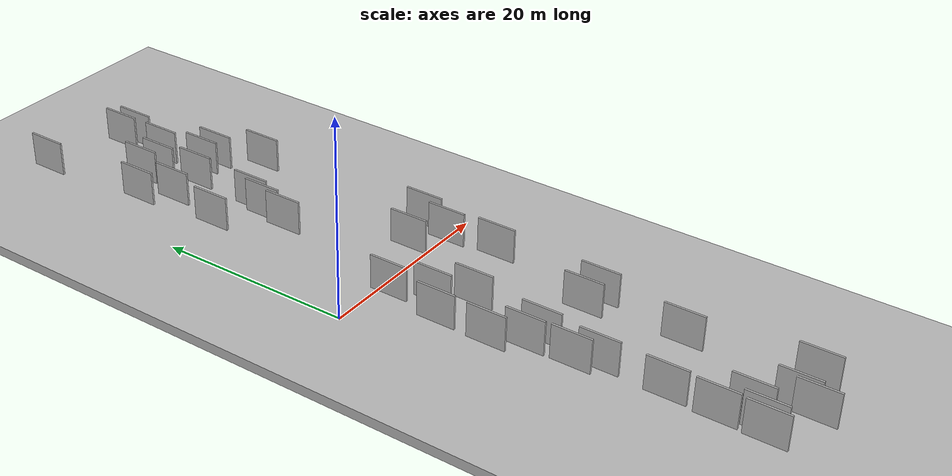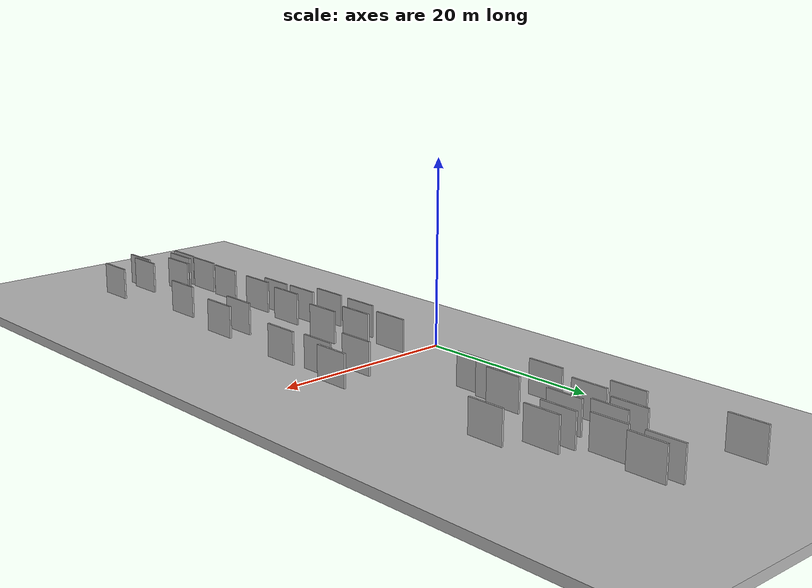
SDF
<?xml version="1.0" encoding="utf-8"?>

<sdf version="1.6">

   <world name="default">

      <gui fullscreen="0">

         <camera name="user_camera">

            <pose>-15 0 4.57585 0 0 0</pose>

            <view_controller>orbit</view_controller>

         </camera>

      </gui>

      <scene>

         <sky>

           <clouds>

             <speed>12</speed>

           </clouds>

         </sky>

         <ambient>0.4 0.4 0.4 1</ambient>

         <background>0.7 0.7 0.7 1</background>

         <shadows>1</shadows>

      </scene>

      <gravity>0 0 -9.8066</gravity>

      <magnetic_field>6e-06 2.3e-05 -4.2e-05</magnetic_field>

      <physics default="0" name="default_physics" type="ode">

         <ode>

            <solver>

               <type>quick</type>

               <iters>10</iters>

               <sor>1.0</sor>

               <use_dynamic_moi_rescaling>0</use_dynamic_moi_rescaling>

            </solver>

            <constraints>

               <cfm>0</cfm>

               <erp>0.2</erp>

               <contact_max_correcting_vel>100</contact_max_correcting_vel>

               <contact_surface_layer>0.001</contact_surface_layer>

            </constraints>

         </ode>

         <max_step_size>0.004</max_step_size>

         <real_time_factor>1</real_time_factor>

         <real_time_update_rate>250</real_time_update_rate>

      </physics>

      <light name="sun" type="directional">

         <cast_shadows>1</cast_shadows>

         <pose>0 0 10 0 0 0</pose>

         <diffuse>0.8 0.8 0.8 1</diffuse>

         <specular>0.2 0.2 0.2 1</specular>

         <attenuation>

            <range>1000</range>

            <constant>0.9</constant>

            <linear>0.01</linear>

            <quadratic>0.001</quadratic>

         </attenuation>

         <direction>-0.5 0.1 -0.9</direction>

      </light>

      <include>

         <name>ground_plane_1</name>

         <uri>model://HANNAS_ground_plane</uri>

         <pose>0 0 0  0 0 0</pose>

      </include>

      <include>

         <name>ground_plane_2</name>

         <uri>model://HANNAS_ground_plane</uri>

         <pose>100 0 0  0 0 0</pose>

      </include>

      <model name="HANNAS_wall_1">

         <static>1</static>

         <pose frame="">14.0933 26.8934 0.0 0.000000 0.000000 1.570796</pose>

         <link name="link">

            <pose frame="">0 0 2.00 0 0 0</pose>

            <collision name="collision">

               <geometry>

                  <box>

                     <size>4.00 0.2 4.00</size>

                  </box>

               </geometry>

               <max_contacts>10</max_contacts>

               <surface>

                  <contact>

                     <ode/>

                  </contact>

                  <bounce/>

                  <friction>

                     <torsional>

                        <ode/>

                     </torsional>

                     <ode/>

                  </friction>

               </surface>

            </collision>

            <visual name="visual">

               <cast_shadows>0</cast_shadows>

               <geometry>

                  <box>

                     <size>4.00 0.2 4.00</size>

                  </box>

               </geometry>

               <material>

                  <script>

                     <uri>model://HANNAS_wall/materials/scripts</uri>

                     <uri>model://HANNAS_wall/materials/textures</uri>

                     <name>vrc/HANNAS_wall</name>

                  </script>

               </material>

            </visual>

            <self_collide>0</self_collide>

            <enable_wind>0</enable_wind>

            <kinematic>0</kinematic>

         </link>

      </model>

      <model name="HANNAS_wall_2">

         <static>1</static>

         <pose frame="">10.8420 -39.9444 0.0 0.000000 0.000000 1.570796</pose>

         <link name="link">

            <pose frame="">0 0 2.00 0 0 0</pose>

            <collision name="collision">

               <geometry>

                  <box>

                     <size>4.00 0.2 4.00</size>

                  </box>

               </geometry>

               <max_contacts>10</max_contacts>

               <surface>

                  <contact>

                     <ode/>

                  </contact>

                  <bounce/>

                  <friction>

                     <torsional>

                        <ode/>

                     </torsional>

                     <ode/>

                  </friction>

               </surface>

            </collision>

            <visual name="visual">

               <cast_shadows>0</cast_shadows>

               <geometry>

                  <box>

                     <size>4.00 0.2 4.00</size>

                  </box>

               </geometry>

               <material>

                  <script>

                     <uri>model://HANNAS_wall/materials/scripts</uri>

                     <uri>model://HANNAS_wall/materials/textures</uri>

                     <name>vrc/HANNAS_wall</name>

                  </script>

               </material>

            </visual>

            <self_collide>0</self_collide>

            <enable_wind>0</enable_wind>

            <kinematic>0</kinematic>

         </link>

      </model>

      <model name="HANNAS_wall_3">

         <static>1</static>

         <pose frame="">6.5179 -5.4441 0.0 0.000000 0.000000 1.570796</pose>

         <link name="link">

            <pose frame="">0 0 2.00 0 0 0</pose>

            <collision name="collision">

               <geometry>

                  <box>

                     <size>4.00 0.2 4.00</size>

                  </box>

               </geometry>

               <max_contacts>10</max_contacts>

               <surface>

                  <contact>

                     <ode/>

                  </contact>

                  <bounce/>

                  <friction>

                     <torsional>

                        <ode/>

                     </torsional>

                     <ode/>

                  </friction>

               </surface>

            </collision>

            <visual name="visual">

               <cast_shadows>0</cast_shadows>

               <geometry>

                  <box>

                     <size>4.00 0.2 4.00</size>

                  </box>

               </geometry>

               <material>

                  <script>

                     <uri>model://HANNAS_wall/materials/scripts</uri>

                     <uri>model://HANNAS_wall/materials/textures</uri>

                     <name>vrc/HANNAS_wall</name>

                  </script>

               </material>

            </visual>

            <self_collide>0</self_collide>

            <enable_wind>0</enable_wind>

            <kinematic>0</kinematic>

         </link>

      </model>

      <model name="HANNAS_wall_4">

         <static>1</static>

         <pose frame="">9.0291 30.0186 0.0 0.000000 0.000000 1.570796</pose>

         <link name="link">

            <pose frame="">0 0 2.00 0 0 0</pose>

            <collision name="collision">

               <geometry>

                  <box>

                     <size>4.00 0.2 4.00</size>

                  </box>

               </geometry>

               <max_contacts>10</max_contacts>

               <surface>

                  <contact>

                     <ode/>

                  </contact>

                  <bounce/>

                  <friction>

                     <torsional>

                        <ode/>

                     </torsional>

                     <ode/>

                  </friction>

               </surface>

            </collision>

            <visual name="visual">

               <cast_shadows>0</cast_shadows>

               <geometry>

                  <box>

                     <size>4.00 0.2 4.00</size>

                  </box>

               </geometry>

               <material>

                  <script>

                     <uri>model://HANNAS_wall/materials/scripts</uri>

                     <uri>model://HANNAS_wall/materials/textures</uri>

                     <name>vrc/HANNAS_wall</name>

                  </script>

               </material>

            </visual>

            <self_collide>0</self_collide>

            <enable_wind>0</enable_wind>

            <kinematic>0</kinematic>

         </link>

      </model>

      <model name="HANNAS_wall_5">

         <static>1</static>

         <pose frame="">3.9470 -12.8075 0.0 0.000000 0.000000 1.570796</pose>

         <link name="link">

            <pose frame="">0 0 2.00 0 0 0</pose>

            <collision name="collision">

               <geometry>

                  <box>

                     <size>4.00 0.2 4.00</size>

                  </box>

               </geometry>

               <max_contacts>10</max_contacts>

               <surface>

                  <contact>

                     <ode/>

                  </contact>

                  <bounce/>

                  <friction>

                     <torsional>

                        <ode/>

                     </torsional>

                     <ode/>

                  </friction>

               </surface>

            </collision>

            <visual name="visual">

               <cast_shadows>0</cast_shadows>

               <geometry>

                  <box>

                     <size>4.00 0.2 4.00</size>

                  </box>

               </geometry>

               <material>

                  <script>

                     <uri>model://HANNAS_wall/materials/scripts</uri>

                     <uri>model://HANNAS_wall/materials/textures</uri>

                     <name>vrc/HANNAS_wall</name>

                  </script>

               </material>

            </visual>

            <self_collide>0</self_collide>

            <enable_wind>0</enable_wind>

            <kinematic>0</kinematic>

         </link>

      </model>

      <model name="HANNAS_wall_6">

         <static>1</static>

         <pose frame="">5.4789 -20.3172 0.0 0.000000 0.000000 1.570796</pose>

         <link name="link">

            <pose frame="">0 0 2.00 0 0 0</pose>

            <collision name="collision">

               <geometry>

                  <box>

                     <size>4.00 0.2 4.00</size>

                  </box>

               </geometry>

               <max_contacts>10</max_contacts>

               <surface>

                  <contact>

                     <ode/>

                  </contact>

                  <bounce/>

                  <friction>

                     <torsional>

                        <ode/>

                     </torsional>

                     <ode/>

                  </friction>

               </surface>

            </collision>

            <visual name="visual">

               <cast_shadows>0</cast_shadows>

               <geometry>

                  <box>

                     <size>4.00 0.2 4.00</size>

                  </box>

               </geometry>

               <material>

                  <script>

                     <uri>model://HANNAS_wall/materials/scripts</uri>

                     <uri>model://HANNAS_wall/materials/textures</uri>

                     <name>vrc/HANNAS_wall</name>

                  </script>

               </material>

            </visual>

            <self_collide>0</self_collide>

            <enable_wind>0</enable_wind>

            <kinematic>0</kinematic>

         </link>

      </model>

      <model name="HANNAS_wall_7">

         <static>1</static>

         <pose frame="">13.1895 -16.9436 0.0 0.000000 0.000000 1.570796</pose>

         <link name="link">

            <pose frame="">0 0 2.00 0 0 0</pose>

            <collision name="collision">

               <geometry>

                  <box>

                     <size>4.00 0.2 4.00</size>

                  </box>

               </geometry>

               <max_contacts>10</max_contacts>

               <surface>

                  <contact>

                     <ode/>

                  </contact>

                  <bounce/>

                  <friction>

                     <torsional>

                        <ode/>

                     </torsional>

                     <ode/>

                  </friction>

               </surface>

            </collision>

            <visual name="visual">

               <cast_shadows>0</cast_shadows>

               <geometry>

                  <box>

                     <size>4.00 0.2 4.00</size>

                  </box>

               </geometry>

               <material>

                  <script>

                     <uri>model://HANNAS_wall/materials/scripts</uri>

                     <uri>model://HANNAS_wall/materials/textures</uri>

                     <name>vrc/HANNAS_wall</name>

                  </script>

               </material>

            </visual>

            <self_collide>0</self_collide>

            <enable_wind>0</enable_wind>

            <kinematic>0</kinematic>

         </link>

      </model>

      <model name="HANNAS_wall_8">

         <static>1</static>

         <pose frame="">6.3228 -28.8273 0.0 0.000000 0.000000 1.570796</pose>

         <link name="link">

            <pose frame="">0 0 2.00 0 0 0</pose>

            <collision name="collision">

               <geometry>

                  <box>

                     <size>4.00 0.2 4.00</size>

                  </box>

               </geometry>

               <max_contacts>10</max_contacts>

               <surface>

                  <contact>

                     <ode/>

                  </contact>

                  <bounce/>

                  <friction>

                     <torsional>

                        <ode/>

                     </torsional>

                     <ode/>

                  </friction>

               </surface>

            </collision>

            <visual name="visual">

               <cast_shadows>0</cast_shadows>

               <geometry>

                  <box>

                     <size>4.00 0.2 4.00</size>

                  </box>

               </geometry>

               <material>

                  <script>

                     <uri>model://HANNAS_wall/materials/scripts</uri>

                     <uri>model://HANNAS_wall/materials/textures</uri>

                     <name>vrc/HANNAS_wall</name>

                  </script>

               </material>

            </visual>

            <self_collide>0</self_collide>

            <enable_wind>0</enable_wind>

            <kinematic>0</kinematic>

         </link>

      </model>

      <model name="HANNAS_wall_9">

         <static>1</static>

         <pose frame="">6.0902 25.4037 0.0 0.000000 0.000000 1.570796</pose>

         <link name="link">

            <pose frame="">0 0 2.00 0 0 0</pose>

            <collision name="collision">

               <geometry>

                  <box>

                     <size>4.00 0.2 4.00</size>

                  </box>

               </geometry>

               <max_contacts>10</max_contacts>

               <surface>

                  <contact>

                     <ode/>

                  </contact>

                  <bounce/>

                  <friction>

                     <torsional>

                        <ode/>

                     </torsional>

                     <ode/>

                  </friction>

               </surface>

            </collision>

            <visual name="visual">

               <cast_shadows>0</cast_shadows>

               <geometry>

                  <box>

                     <size>4.00 0.2 4.00</size>

                  </box>

               </geometry>

               <material>

                  <script>

                     <uri>model://HANNAS_wall/materials/scripts</uri>

                     <uri>model://HANNAS_wall/materials/textures</uri>

                     <name>vrc/HANNAS_wall</name>

                  </script>

               </material>

            </visual>

            <self_collide>0</self_collide>

            <enable_wind>0</enable_wind>

            <kinematic>0</kinematic>

         </link>

      </model>

      <model name="HANNAS_wall_10">

         <static>1</static>

         <pose frame="">8.2952 13.2412 0.0 0.000000 0.000000 1.570796</pose>

         <link name="link">

            <pose frame="">0 0 2.00 0 0 0</pose>

            <collision name="collision">

               <geometry>

                  <box>

                     <size>4.00 0.2 4.00</size>

                  </box>

               </geometry>

               <max_contacts>10</max_contacts>

               <surface>

                  <contact>

                     <ode/>

                  </contact>

                  <bounce/>

                  <friction>

                     <torsional>

                        <ode/>

                     </torsional>

                     <ode/>

                  </friction>

               </surface>

            </collision>

            <visual name="visual">

               <cast_shadows>0</cast_shadows>

               <geometry>

                  <box>

                     <size>4.00 0.2 4.00</size>

                  </box>

               </geometry>

               <material>

                  <script>

                     <uri>model://HANNAS_wall/materials/scripts</uri>

                     <uri>model://HANNAS_wall/materials/textures</uri>

                     <name>vrc/HANNAS_wall</name>

                  </script>

               </material>

            </visual>

            <self_collide>0</self_collide>

            <enable_wind>0</enable_wind>

            <kinematic>0</kinematic>

         </link>

      </model>

      <model name="HANNAS_wall_11">

         <static>1</static>

         <pose frame="">16.1014 -5.8815 0.0 0.000000 0.000000 1.570796</pose>

         <link name="link">

            <pose frame="">0 0 2.00 0 0 0</pose>

            <collision name="collision">

               <geometry>

                  <box>

                     <size>4.00 0.2 4.00</size>

                  </box>

               </geometry>

               <max_contacts>10</max_contacts>

               <surface>

                  <contact>

                     <ode/>

                  </contact>

                  <bounce/>

                  <friction>

                     <torsional>

                        <ode/>

                     </torsional>

                     <ode/>

                  </friction>

               </surface>

            </collision>

            <visual name="visual">

               <cast_shadows>0</cast_shadows>

               <geometry>

                  <box>

                     <size>4.00 0.2 4.00</size>

                  </box>

               </geometry>

               <material>

                  <script>

                     <uri>model://HANNAS_wall/materials/scripts</uri>

                     <uri>model://HANNAS_wall/materials/textures</uri>

                     <name>vrc/HANNAS_wall</name>

                  </script>

               </material>

            </visual>

            <self_collide>0</self_collide>

            <enable_wind>0</enable_wind>

            <kinematic>0</kinematic>

         </link>

      </model>

      <model name="HANNAS_wall_12">

         <static>1</static>

         <pose frame="">11.4722 37.5668 0.0 0.000000 0.000000 1.570796</pose>

         <link name="link">

            <pose frame="">0 0 2.00 0 0 0</pose>

            <collision name="collision">

               <geometry>

                  <box>

                     <size>4.00 0.2 4.00</size>

                  </box>

               </geometry>

               <max_contacts>10</max_contacts>

               <surface>

                  <contact>

                     <ode/>

                  </contact>

                  <bounce/>

                  <friction>

                     <torsional>

                        <ode/>

                     </torsional>

                     <ode/>

                  </friction>

               </surface>

            </collision>

            <visual name="visual">

               <cast_shadows>0</cast_shadows>

               <geometry>

                  <box>

                     <size>4.00 0.2 4.00</size>

                  </box>

               </geometry>

               <material>

                  <script>

                     <uri>model://HANNAS_wall/materials/scripts</uri>

                     <uri>model://HANNAS_wall/materials/textures</uri>

                     <name>vrc/HANNAS_wall</name>

                  </script>

               </material>

            </visual>

            <self_collide>0</self_collide>

            <enable_wind>0</enable_wind>

            <kinematic>0</kinematic>

         </link>

      </model>

      <model name="HANNAS_wall_13">

         <static>1</static>

         <pose frame="">7.4066 30.8573 0.0 0.000000 0.000000 1.570796</pose>

         <link name="link">

            <pose frame="">0 0 2.00 0 0 0</pose>

            <collision name="collision">

               <geometry>

                  <box>

                     <size>4.00 0.2 4.00</size>

                  </box>

               </geometry>

               <max_contacts>10</max_contacts>

               <surface>

                  <contact>

                     <ode/>

                  </contact>

                  <bounce/>

                  <friction>

                     <torsional>

                        <ode/>

                     </torsional>

                     <ode/>

                  </friction>

               </surface>

            </collision>

            <visual name="visual">

               <cast_shadows>0</cast_shadows>

               <geometry>

                  <box>

                     <size>4.00 0.2 4.00</size>

                  </box>

               </geometry>

               <material>

                  <script>

                     <uri>model://HANNAS_wall/materials/scripts</uri>

                     <uri>model://HANNAS_wall/materials/textures</uri>

                     <name>vrc/HANNAS_wall</name>

                  </script>

               </material>

            </visual>

            <self_collide>0</self_collide>

            <enable_wind>0</enable_wind>

            <kinematic>0</kinematic>

         </link>

      </model>

      <model name="HANNAS_wall_14">

         <static>1</static>

         <pose frame="">7.1376 -16.3707 0.0 0.000000 0.000000 1.570796</pose>

         <link name="link">

            <pose frame="">0 0 2.00 0 0 0</pose>

            <collision name="collision">

               <geometry>

                  <box>

                     <size>4.00 0.2 4.00</size>

                  </box>

               </geometry>

               <max_contacts>10</max_contacts>

               <surface>

                  <contact>

                     <ode/>

                  </contact>

                  <bounce/>

                  <friction>

                     <torsional>

                        <ode/>

                     </torsional>

                     <ode/>

                  </friction>

               </surface>

            </collision>

            <visual name="visual">

               <cast_shadows>0</cast_shadows>

               <geometry>

                  <box>

                     <size>4.00 0.2 4.00</size>

                  </box>

               </geometry>

               <material>

                  <script>

                     <uri>model://HANNAS_wall/materials/scripts</uri>

                     <uri>model://HANNAS_wall/materials/textures</uri>

                     <name>vrc/HANNAS_wall</name>

                  </script>

               </material>

            </visual>

            <self_collide>0</self_collide>

            <enable_wind>0</enable_wind>

            <kinematic>0</kinematic>

         </link>

      </model>

      <model name="HANNAS_wall_15">

         <static>1</static>

         <pose frame="">15.6991 -0.5692 0.0 0.000000 0.000000 1.570796</pose>

         <link name="link">

            <pose frame="">0 0 2.00 0 0 0</pose>

            <collision name="collision">

               <geometry>

                  <box>

                     <size>4.00 0.2 4.00</size>

                  </box>

               </geometry>

               <max_contacts>10</max_contacts>

               <surface>

                  <contact>

                     <ode/>

                  </contact>

                  <bounce/>

                  <friction>

                     <torsional>

                        <ode/>

                     </torsional>

                     <ode/>

                  </friction>

               </surface>

            </collision>

            <visual name="visual">

               <cast_shadows>0</cast_shadows>

               <geometry>

                  <box>

                     <size>4.00 0.2 4.00</size>

                  </box>

               </geometry>

               <material>

                  <script>

                     <uri>model://HANNAS_wall/materials/scripts</uri>

                     <uri>model://HANNAS_wall/materials/textures</uri>

                     <name>vrc/HANNAS_wall</name>

                  </script>

               </material>

            </visual>

            <self_collide>0</self_collide>

            <enable_wind>0</enable_wind>

            <kinematic>0</kinematic>

         </link>

      </model>

      <model name="HANNAS_wall_16">

         <static>1</static>

         <pose frame="">5.9000 -37.9345 0.0 0.000000 0.000000 1.570796</pose>

         <link name="link">

            <pose frame="">0 0 2.00 0 0 0</pose>

            <collision name="collision">

               <geometry>

                  <box>

                     <size>4.00 0.2 4.00</size>

                  </box>

               </geometry>

               <max_contacts>10</max_contacts>

               <surface>

                  <contact>

                     <ode/>

                  </contact>

                  <bounce/>

                  <friction>

                     <torsional>

                        <ode/>

                     </torsional>

                     <ode/>

                  </friction>

               </surface>

            </collision>

            <visual name="visual">

               <cast_shadows>0</cast_shadows>

               <geometry>

                  <box>

                     <size>4.00 0.2 4.00</size>

                  </box>

               </geometry>

               <material>

                  <script>

                     <uri>model://HANNAS_wall/materials/scripts</uri>

                     <uri>model://HANNAS_wall/materials/textures</uri>

                     <name>vrc/HANNAS_wall</name>

                  </script>

               </material>

            </visual>

            <self_collide>0</self_collide>

            <enable_wind>0</enable_wind>

            <kinematic>0</kinematic>

         </link>

      </model>

      <model name="HANNAS_wall_17">

         <static>1</static>

         <pose frame="">5.3829 -15.8128 0.0 0.000000 0.000000 1.570796</pose>

         <link name="link">

            <pose frame="">0 0 2.00 0 0 0</pose>

            <collision name="collision">

               <geometry>

                  <box>

                     <size>4.00 0.2 4.00</size>

                  </box>

               </geometry>

               <max_contacts>10</max_contacts>

               <surface>

                  <contact>

                     <ode/>

                  </contact>

                  <bounce/>

                  <friction>

                     <torsional>

                        <ode/>

                     </torsional>

                     <ode/>

                  </friction>

               </surface>

            </collision>

            <visual name="visual">

               <cast_shadows>0</cast_shadows>

               <geometry>

                  <box>

                     <size>4.00 0.2 4.00</size>

                  </box>

               </geometry>

               <material>

                  <script>

                     <uri>model://HANNAS_wall/materials/scripts</uri>

                     <uri>model://HANNAS_wall/materials/textures</uri>

                     <name>vrc/HANNAS_wall</name>

                  </script>

               </material>

            </visual>

            <self_collide>0</self_collide>

            <enable_wind>0</enable_wind>

            <kinematic>0</kinematic>

         </link>

      </model>

      <model name="HANNAS_wall_18">

         <static>1</static>

         <pose frame="">16.4602 22.6926 0.0 0.000000 0.000000 1.570796</pose>

         <link name="link">

            <pose frame="">0 0 2.00 0 0 0</pose>

            <collision name="collision">

               <geometry>

                  <box>

                     <size>4.00 0.2 4.00</size>

                  </box>

               </geometry>

               <max_contacts>10</max_contacts>

               <surface>

                  <contact>

                     <ode/>

                  </contact>

                  <bounce/>

                  <friction>

                     <torsional>

                        <ode/>

                     </torsional>

                     <ode/>

                  </friction>

               </surface>

            </collision>

            <visual name="visual">

               <cast_shadows>0</cast_shadows>

               <geometry>

                  <box>

                     <size>4.00 0.2 4.00</size>

                  </box>

               </geometry>

               <material>

                  <script>

                     <uri>model://HANNAS_wall/materials/scripts</uri>

                     <uri>model://HANNAS_wall/materials/textures</uri>

                     <name>vrc/HANNAS_wall</name>

                  </script>

               </material>

            </visual>

            <self_collide>0</self_collide>

            <enable_wind>0</enable_wind>

            <kinematic>0</kinematic>

         </link>

      </model>

      <model name="HANNAS_wall_19">

         <static>1</static>

         <pose frame="">12.4256 27.2578 0.0 0.000000 0.000000 1.570796</pose>

         <link name="link">

            <pose frame="">0 0 2.00 0 0 0</pose>

            <collision name="collision">

               <geometry>

                  <box>

                     <size>4.00 0.2 4.00</size>

                  </box>

               </geometry>

               <max_contacts>10</max_contacts>

               <surface>

                  <contact>

                     <ode/>

                  </contact>

                  <bounce/>

                  <friction>

                     <torsional>

                        <ode/>

                     </torsional>

                     <ode/>

                  </friction>

               </surface>

            </collision>

            <visual name="visual">

               <cast_shadows>0</cast_shadows>

               <geometry>

                  <box>

                     <size>4.00 0.2 4.00</size>

                  </box>

               </geometry>

               <material>

                  <script>

                     <uri>model://HANNAS_wall/materials/scripts</uri>

                     <uri>model://HANNAS_wall/materials/textures</uri>

                     <name>vrc/HANNAS_wall</name>

                  </script>

               </material>

            </visual>

            <self_collide>0</self_collide>

            <enable_wind>0</enable_wind>

            <kinematic>0</kinematic>

         </link>

      </model>

      <model name="HANNAS_wall_20">

         <static>1</static>

         <pose frame="">8.8920 16.2990 0.0 0.000000 0.000000 1.570796</pose>

         <link name="link">

            <pose frame="">0 0 2.00 0 0 0</pose>

            <collision name="collision">

               <geometry>

                  <box>

                     <size>4.00 0.2 4.00</size>

                  </box>

               </geometry>

               <max_contacts>10</max_contacts>

               <surface>

                  <contact>

                     <ode/>

                  </contact>

                  <bounce/>

                  <friction>

                     <torsional>

                        <ode/>

                     </torsional>

                     <ode/>

                  </friction>

               </surface>

            </collision>

            <visual name="visual">

               <cast_shadows>0</cast_shadows>

               <geometry>

                  <box>

                     <size>4.00 0.2 4.00</size>

                  </box>

               </geometry>

               <material>

                  <script>

                     <uri>model://HANNAS_wall/materials/scripts</uri>

                     <uri>model://HANNAS_wall/materials/textures</uri>

                     <name>vrc/HANNAS_wall</name>

                  </script>

               </material>

            </visual>

            <self_collide>0</self_collide>

            <enable_wind>0</enable_wind>

            <kinematic>0</kinematic>

         </link>

      </model>

      <model name="HANNAS_wall_21">

         <static>1</static>

         <pose frame="">9.7380 25.6461 0.0 0.000000 0.000000 1.570796</pose>

         <link name="link">

            <pose frame="">0 0 2.00 0 0 0</pose>

            <collision name="collision">

               <geometry>

                  <box>

                     <size>4.00 0.2 4.00</size>

                  </box>

               </geometry>

               <max_contacts>10</max_contacts>

               <surface>

                  <contact>

                     <ode/>

                  </contact>

                  <bounce/>

                  <friction>

                     <torsional>

                        <ode/>

                     </torsional>

                     <ode/>

                  </friction>

               </surface>

            </collision>

            <visual name="visual">

               <cast_shadows>0</cast_shadows>

               <geometry>

                  <box>

                     <size>4.00 0.2 4.00</size>

                  </box>

               </geometry>

               <material>

                  <script>

                     <uri>model://HANNAS_wall/materials/scripts</uri>

                     <uri>model://HANNAS_wall/materials/textures</uri>

                     <name>vrc/HANNAS_wall</name>

                  </script>

               </material>

            </visual>

            <self_collide>0</self_collide>

            <enable_wind>0</enable_wind>

            <kinematic>0</kinematic>

         </link>

      </model>

      <model name="HANNAS_wall_22">

         <static>1</static>

         <pose frame="">3.1246 39.6825 0.0 0.000000 0.000000 1.570796</pose>

         <link name="link">

            <pose frame="">0 0 2.00 0 0 0</pose>

            <collision name="collision">

               <geometry>

                  <box>

                     <size>4.00 0.2 4.00</size>

                  </box>

               </geometry>

               <max_contacts>10</max_contacts>

               <surface>

                  <contact>

                     <ode/>

                  </contact>

                  <bounce/>

                  <friction>

                     <torsional>

                        <ode/>

                     </torsional>

                     <ode/>

                  </friction>

               </surface>

            </collision>

            <visual name="visual">

               <cast_shadows>0</cast_shadows>

               <geometry>

                  <box>

                     <size>4.00 0.2 4.00</size>

                  </box>

               </geometry>

               <material>

                  <script>

                     <uri>model://HANNAS_wall/materials/scripts</uri>

                     <uri>model://HANNAS_wall/materials/textures</uri>

                     <name>vrc/HANNAS_wall</name>

                  </script>

               </material>

            </visual>

            <self_collide>0</self_collide>

            <enable_wind>0</enable_wind>

            <kinematic>0</kinematic>

         </link>

      </model>

      <model name="HANNAS_wall_23">

         <static>1</static>

         <pose frame="">6.8528 -37.3187 0.0 0.000000 0.000000 1.570796</pose>

         <link name="link">

            <pose frame="">0 0 2.00 0 0 0</pose>

            <collision name="collision">

               <geometry>

                  <box>

                     <size>4.00 0.2 4.00</size>

                  </box>

               </geometry>

               <max_contacts>10</max_contacts>

               <surface>

                  <contact>

                     <ode/>

                  </contact>

                  <bounce/>

                  <friction>

                     <torsional>

                        <ode/>

                     </torsional>

                     <ode/>

                  </friction>

               </surface>

            </collision>

            <visual name="visual">

               <cast_shadows>0</cast_shadows>

               <geometry>

                  <box>

                     <size>4.00 0.2 4.00</size>

                  </box>

               </geometry>

               <material>

                  <script>

                     <uri>model://HANNAS_wall/materials/scripts</uri>

                     <uri>model://HANNAS_wall/materials/textures</uri>

                     <name>vrc/HANNAS_wall</name>

                  </script>

               </material>

            </visual>

            <self_collide>0</self_collide>

            <enable_wind>0</enable_wind>

            <kinematic>0</kinematic>

         </link>

      </model>

      <model name="HANNAS_wall_24">

         <static>1</static>

         <pose frame="">5.1294 -1.6323 0.0 0.000000 0.000000 1.570796</pose>

         <link name="link">

            <pose frame="">0 0 2.00 0 0 0</pose>

            <collision name="collision">

               <geometry>

                  <box>

                     <size>4.00 0.2 4.00</size>

                  </box>

               </geometry>

               <max_contacts>10</max_contacts>

               <surface>

                  <contact>

                     <ode/>

                  </contact>

                  <bounce/>

                  <friction>

                     <torsional>

                        <ode/>

                     </torsional>

                     <ode/>

                  </friction>

               </surface>

            </collision>

            <visual name="visual">

               <cast_shadows>0</cast_shadows>

               <geometry>

                  <box>

                     <size>4.00 0.2 4.00</size>

                  </box>

               </geometry>

               <material>

                  <script>

                     <uri>model://HANNAS_wall/materials/scripts</uri>

                     <uri>model://HANNAS_wall/materials/textures</uri>

                     <name>vrc/HANNAS_wall</name>

                  </script>

               </material>

            </visual>

            <self_collide>0</self_collide>

            <enable_wind>0</enable_wind>

            <kinematic>0</kinematic>

         </link>

      </model>

      <model name="HANNAS_wall_25">

         <static>1</static>

         <pose frame="">15.4438 -17.3265 0.0 0.000000 0.000000 1.570796</pose>

         <link name="link">

            <pose frame="">0 0 2.00 0 0 0</pose>

            <collision name="collision">

               <geometry>

                  <box>

                     <size>4.00 0.2 4.00</size>

                  </box>

               </geometry>

               <max_contacts>10</max_contacts>

               <surface>

                  <contact>

                     <ode/>

                  </contact>

                  <bounce/>

                  <friction>

                     <torsional>

                        <ode/>

                     </torsional>

                     <ode/>

                  </friction>

               </surface>

            </collision>

            <visual name="visual">

               <cast_shadows>0</cast_shadows>

               <geometry>

                  <box>

                     <size>4.00 0.2 4.00</size>

                  </box>

               </geometry>

               <material>

                  <script>

                     <uri>model://HANNAS_wall/materials/scripts</uri>

                     <uri>model://HANNAS_wall/materials/textures</uri>

                     <name>vrc/HANNAS_wall</name>

                  </script>

               </material>

            </visual>

            <self_collide>0</self_collide>

            <enable_wind>0</enable_wind>

            <kinematic>0</kinematic>

         </link>

      </model>

      <model name="HANNAS_wall_26">

         <static>1</static>

         <pose frame="">13.9778 -26.3686 0.0 0.000000 0.000000 1.570796</pose>

         <link name="link">

            <pose frame="">0 0 2.00 0 0 0</pose>

            <collision name="collision">

               <geometry>

                  <box>

                     <size>4.00 0.2 4.00</size>

                  </box>

               </geometry>

               <max_contacts>10</max_contacts>

               <surface>

                  <contact>

                     <ode/>

                  </contact>

                  <bounce/>

                  <friction>

                     <torsional>

                        <ode/>

                     </torsional>

                     <ode/>

                  </friction>

               </surface>

            </collision>

            <visual name="visual">

               <cast_shadows>0</cast_shadows>

               <geometry>

                  <box>

                     <size>4.00 0.2 4.00</size>

                  </box>

               </geometry>

               <material>

                  <script>

                     <uri>model://HANNAS_wall/materials/scripts</uri>

                     <uri>model://HANNAS_wall/materials/textures</uri>

                     <name>vrc/HANNAS_wall</name>

                  </script>

               </material>

            </visual>

            <self_collide>0</self_collide>

            <enable_wind>0</enable_wind>

            <kinematic>0</kinematic>

         </link>

      </model>

      <model name="HANNAS_wall_27">

         <static>1</static>

         <pose frame="">4.1458 28.2327 0.0 0.000000 0.000000 1.570796</pose>

         <link name="link">

            <pose frame="">0 0 2.00 0 0 0</pose>

            <collision name="collision">

               <geometry>

                  <box>

                     <size>4.00 0.2 4.00</size>

                  </box>

               </geometry>

               <max_contacts>10</max_contacts>

               <surface>

                  <contact>

                     <ode/>

                  </contact>

                  <bounce/>

                  <friction>

                     <torsional>

                        <ode/>

                     </torsional>

                     <ode/>

                  </friction>

               </surface>

            </collision>

            <visual name="visual">

               <cast_shadows>0</cast_shadows>

               <geometry>

                  <box>

                     <size>4.00 0.2 4.00</size>

                  </box>

               </geometry>

               <material>

                  <script>

                     <uri>model://HANNAS_wall/materials/scripts</uri>

                     <uri>model://HANNAS_wall/materials/textures</uri>

                     <name>vrc/HANNAS_wall</name>

                  </script>

               </material>

            </visual>

            <self_collide>0</self_collide>

            <enable_wind>0</enable_wind>

            <kinematic>0</kinematic>

         </link>

      </model>

      <model name="HANNAS_wall_28">

         <static>1</static>

         <pose frame="">12.6117 36.6488 0.0 0.000000 0.000000 1.570796</pose>

         <link name="link">

            <pose frame="">0 0 2.00 0 0 0</pose>

            <collision name="collision">

               <geometry>

                  <box>

                     <size>4.00 0.2 4.00</size>

                  </box>

               </geometry>

               <max_contacts>10</max_contacts>

               <surface>

                  <contact>

                     <ode/>

                  </contact>

                  <bounce/>

                  <friction>

                     <torsional>

                        <ode/>

                     </torsional>

                     <ode/>

                  </friction>

               </surface>

            </collision>

            <visual name="visual">

               <cast_shadows>0</cast_shadows>

               <geometry>

                  <box>

                     <size>4.00 0.2 4.00</size>

                  </box>

               </geometry>

               <material>

                  <script>

                     <uri>model://HANNAS_wall/materials/scripts</uri>

                     <uri>model://HANNAS_wall/materials/textures</uri>

                     <name>vrc/HANNAS_wall</name>

                  </script>

               </material>

            </visual>

            <self_collide>0</self_collide>

            <enable_wind>0</enable_wind>

            <kinematic>0</kinematic>

         </link>

      </model>

      <model name="HANNAS_wall_29">

         <static>1</static>

         <pose frame="">16.7908 2.7778 0.0 0.000000 0.000000 1.570796</pose>

         <link name="link">

            <pose frame="">0 0 2.00 0 0 0</pose>

            <collision name="collision">

               <geometry>

                  <box>

                     <size>4.00 0.2 4.00</size>

                  </box>

               </geometry>

               <max_contacts>10</max_contacts>

               <surface>

                  <contact>

                     <ode/>

                  </contact>

                  <bounce/>

                  <friction>

                     <torsional>

                        <ode/>

                     </torsional>

                     <ode/>

                  </friction>

               </surface>

            </collision>

            <visual name="visual">

               <cast_shadows>0</cast_shadows>

               <geometry>

                  <box>

                     <size>4.00 0.2 4.00</size>

                  </box>

               </geometry>

               <material>

                  <script>

                     <uri>model://HANNAS_wall/materials/scripts</uri>

                     <uri>model://HANNAS_wall/materials/textures</uri>

                     <name>vrc/HANNAS_wall</name>

                  </script>

               </material>

            </visual>

            <self_collide>0</self_collide>

            <enable_wind>0</enable_wind>

            <kinematic>0</kinematic>

         </link>

      </model>

      <model name="HANNAS_wall_30">

         <static>1</static>

         <pose frame="">15.4554 -38.0920 0.0 0.000000 0.000000 1.570796</pose>

         <link name="link">

            <pose frame="">0 0 2.00 0 0 0</pose>

            <collision name="collision">

               <geometry>

                  <box>

                     <size>4.00 0.2 4.00</size>

                  </box>

               </geometry>

               <max_contacts>10</max_contacts>

               <surface>

                  <contact>

                     <ode/>

                  </contact>

                  <bounce/>

                  <friction>

                     <torsional>

                        <ode/>

                     </torsional>

                     <ode/>

                  </friction>

               </surface>

            </collision>

            <visual name="visual">

               <cast_shadows>0</cast_shadows>

               <geometry>

                  <box>

                     <size>4.00 0.2 4.00</size>

                  </box>

               </geometry>

               <material>

                  <script>

                     <uri>model://HANNAS_wall/materials/scripts</uri>

                     <uri>model://HANNAS_wall/materials/textures</uri>

                     <name>vrc/HANNAS_wall</name>

                  </script>

               </material>

            </visual>

            <self_collide>0</self_collide>

            <enable_wind>0</enable_wind>

            <kinematic>0</kinematic>

         </link>

      </model>

      <model name="HANNAS_wall_31">

         <static>1</static>

         <pose frame="">4.8021 19.2512 0.0 0.000000 0.000000 1.570796</pose>

         <link name="link">

            <pose frame="">0 0 2.00 0 0 0</pose>

            <collision name="collision">

               <geometry>

                  <box>

                     <size>4.00 0.2 4.00</size>

                  </box>

               </geometry>

               <max_contacts>10</max_contacts>

               <surface>

                  <contact>

                     <ode/>

                  </contact>

                  <bounce/>

                  <friction>

                     <torsional>

                        <ode/>

                     </torsional>

                     <ode/>

                  </friction>

               </surface>

            </collision>

            <visual name="visual">

               <cast_shadows>0</cast_shadows>

               <geometry>

                  <box>

                     <size>4.00 0.2 4.00</size>

                  </box>

               </geometry>

               <material>

                  <script>

                     <uri>model://HANNAS_wall/materials/scripts</uri>

                     <uri>model://HANNAS_wall/materials/textures</uri>

                     <name>vrc/HANNAS_wall</name>

                  </script>

               </material>

            </visual>

            <self_collide>0</self_collide>

            <enable_wind>0</enable_wind>

            <kinematic>0</kinematic>

         </link>

      </model>

      <model name="HANNAS_wall_32">

         <static>1</static>

         <pose frame="">8.4743 -8.5097 0.0 0.000000 0.000000 1.570796</pose>

         <link name="link">

            <pose frame="">0 0 2.00 0 0 0</pose>

            <collision name="collision">

               <geometry>

                  <box>

                     <size>4.00 0.2 4.00</size>

                  </box>

               </geometry>

               <max_contacts>10</max_contacts>

               <surface>

                  <contact>

                     <ode/>

                  </contact>

                  <bounce/>

                  <friction>

                     <torsional>

                        <ode/>

                     </torsional>

                     <ode/>

                  </friction>

               </surface>

            </collision>

            <visual name="visual">

               <cast_shadows>0</cast_shadows>

               <geometry>

                  <box>

                     <size>4.00 0.2 4.00</size>

                  </box>

               </geometry>

               <material>

                  <script>

                     <uri>model://HANNAS_wall/materials/scripts</uri>

                     <uri>model://HANNAS_wall/materials/textures</uri>

                     <name>vrc/HANNAS_wall</name>

                  </script>

               </material>

            </visual>

            <self_collide>0</self_collide>

            <enable_wind>0</enable_wind>

            <kinematic>0</kinematic>

         </link>

      </model>

      <model name="HANNAS_wall_33">

         <static>1</static>

         <pose frame="">11.4259 -38.0892 0.0 0.000000 0.000000 1.570796</pose>

         <link name="link">

            <pose frame="">0 0 2.00 0 0 0</pose>

            <collision name="collision">

               <geometry>

                  <box>

                     <size>4.00 0.2 4.00</size>

                  </box>

               </geometry>

               <max_contacts>10</max_contacts>

               <surface>

                  <contact>

                     <ode/>

                  </contact>

                  <bounce/>

                  <friction>

                     <torsional>

                        <ode/>

                     </torsional>

                     <ode/>

                  </friction>

               </surface>

            </collision>

            <visual name="visual">

               <cast_shadows>0</cast_shadows>

               <geometry>

                  <box>

                     <size>4.00 0.2 4.00</size>

                  </box>

               </geometry>

               <material>

                  <script>

                     <uri>model://HANNAS_wall/materials/scripts</uri>

                     <uri>model://HANNAS_wall/materials/textures</uri>

                     <name>vrc/HANNAS_wall</name>

                  </script>

               </material>

            </visual>

            <self_collide>0</self_collide>

            <enable_wind>0</enable_wind>

            <kinematic>0</kinematic>

         </link>

      </model>

      <model name="HANNAS_wall_34">

         <static>1</static>

         <pose frame="">8.4274 -35.4603 0.0 0.000000 0.000000 1.570796</pose>

         <link name="link">

            <pose frame="">0 0 2.00 0 0 0</pose>

            <collision name="collision">

               <geometry>

                  <box>

                     <size>4.00 0.2 4.00</size>

                  </box>

               </geometry>

               <max_contacts>10</max_contacts>

               <surface>

                  <contact>

                     <ode/>

                  </contact>

                  <bounce/>

                  <friction>

                     <torsional>

                        <ode/>

                     </torsional>

                     <ode/>

                  </friction>

               </surface>

            </collision>

            <visual name="visual">

               <cast_shadows>0</cast_shadows>

               <geometry>

                  <box>

                     <size>4.00 0.2 4.00</size>

                  </box>

               </geometry>

               <material>

                  <script>

                     <uri>model://HANNAS_wall/materials/scripts</uri>

                     <uri>model://HANNAS_wall/materials/textures</uri>

                     <name>vrc/HANNAS_wall</name>

                  </script>

               </material>

            </visual>

            <self_collide>0</self_collide>

            <enable_wind>0</enable_wind>

            <kinematic>0</kinematic>

         </link>

      </model>

      <model name="HANNAS_wall_35">

         <static>1</static>

         <pose frame="">12.6540 1.6313 0.0 0.000000 0.000000 1.570796</pose>

         <link name="link">

            <pose frame="">0 0 2.00 0 0 0</pose>

            <collision name="collision">

               <geometry>

                  <box>

                     <size>4.00 0.2 4.00</size>

                  </box>

               </geometry>

               <max_contacts>10</max_contacts>

               <surface>

                  <contact>

                     <ode/>

                  </contact>

                  <bounce/>

                  <friction>

                     <torsional>

                        <ode/>

                     </torsional>

                     <ode/>

                  </friction>

               </surface>

            </collision>

            <visual name="visual">

               <cast_shadows>0</cast_shadows>

               <geometry>

                  <box>

                     <size>4.00 0.2 4.00</size>

                  </box>

               </geometry>

               <material>

                  <script>

                     <uri>model://HANNAS_wall/materials/scripts</uri>

                     <uri>model://HANNAS_wall/materials/textures</uri>

                     <name>vrc/HANNAS_wall</name>

                  </script>

               </material>

            </visual>

            <self_collide>0</self_collide>

            <enable_wind>0</enable_wind>

            <kinematic>0</kinematic>

         </link>

      </model>

      <model name="HANNAS_wall_36">

         <static>1</static>

         <pose frame="">4.0652 -7.4992 0.0 0.000000 0.000000 1.570796</pose>

         <link name="link">

            <pose frame="">0 0 2.00 0 0 0</pose>

            <collision name="collision">

               <geometry>

                  <box>

                     <size>4.00 0.2 4.00</size>

                  </box>

               </geometry>

               <max_contacts>10</max_contacts>

               <surface>

                  <contact>

                     <ode/>

                  </contact>

                  <bounce/>

                  <friction>

                     <torsional>

                        <ode/>

                     </torsional>

                     <ode/>

                  </friction>

               </surface>

            </collision>

            <visual name="visual">

               <cast_shadows>0</cast_shadows>

               <geometry>

                  <box>

                     <size>4.00 0.2 4.00</size>

                  </box>

               </geometry>

               <material>

                  <script>

                     <uri>model://HANNAS_wall/materials/scripts</uri>

                     <uri>model://HANNAS_wall/materials/textures</uri>

                     <name>vrc/HANNAS_wall</name>

                  </script>

               </material>

            </visual>

            <self_collide>0</self_collide>

            <enable_wind>0</enable_wind>

            <kinematic>0</kinematic>

         </link>

      </model>

      <model name="HANNAS_wall_37">

         <static>1</static>

         <pose frame="">6.0575 -33.5129 0.0 0.000000 0.000000 1.570796</pose>

         <link name="link">

            <pose frame="">0 0 2.00 0 0 0</pose>

            <collision name="collision">

               <geometry>

                  <box>

                     <size>4.00 0.2 4.00</size>

                  </box>

               </geometry>

               <max_contacts>10</max_contacts>

               <surface>

                  <contact>

                     <ode/>

                  </contact>

                  <bounce/>

                  <friction>

                     <torsional>

                        <ode/>

                     </torsional>

                     <ode/>

                  </friction>

               </surface>

            </collision>

            <visual name="visual">

               <cast_shadows>0</cast_shadows>

               <geometry>

                  <box>

                     <size>4.00 0.2 4.00</size>

                  </box>

               </geometry>

               <material>

                  <script>

                     <uri>model://HANNAS_wall/materials/scripts</uri>

                     <uri>model://HANNAS_wall/materials/textures</uri>

                     <name>vrc/HANNAS_wall</name>

                  </script>

               </material>

            </visual>

            <self_collide>0</self_collide>

            <enable_wind>0</enable_wind>

            <kinematic>0</kinematic>

         </link>

      </model>

      <model name="HANNAS_wall_38">

         <static>1</static>

         <pose frame="">9.5474 18.2937 0.0 0.000000 0.000000 1.570796</pose>

         <link name="link">

            <pose frame="">0 0 2.00 0 0 0</pose>

            <collision name="collision">

               <geometry>

                  <box>

                     <size>4.00 0.2 4.00</size>

                  </box>

               </geometry>

               <max_contacts>10</max_contacts>

               <surface>

                  <contact>

                     <ode/>

                  </contact>

                  <bounce/>

                  <friction>

                     <torsional>

                        <ode/>

                     </torsional>

                     <ode/>

                  </friction>

               </surface>

            </collision>

            <visual name="visual">

               <cast_shadows>0</cast_shadows>

               <geometry>

                  <box>

                     <size>4.00 0.2 4.00</size>

                  </box>

               </geometry>

               <material>

                  <script>

                     <uri>model://HANNAS_wall/materials/scripts</uri>

                     <uri>model://HANNAS_wall/materials/textures</uri>

                     <name>vrc/HANNAS_wall</name>

                  </script>

               </material>

            </visual>

            <self_collide>0</self_collide>

            <enable_wind>0</enable_wind>

            <kinematic>0</kinematic>

         </link>

      </model>

      <model name="HANNAS_wall_39">

         <static>1</static>

         <pose frame="">11.5958 32.0478 0.0 0.000000 0.000000 1.570796</pose>

         <link name="link">

            <pose frame="">0 0 2.00 0 0 0</pose>

            <collision name="collision">

               <geometry>

                  <box>

                     <size>4.00 0.2 4.00</size>

                  </box>

               </geometry>

               <max_contacts>10</max_contacts>

               <surface>

                  <contact>

                     <ode/>

                  </contact>

                  <bounce/>

                  <friction>

                     <torsional>

                        <ode/>

                     </torsional>

                     <ode/>

                  </friction>

               </surface>

            </collision>

            <visual name="visual">

               <cast_shadows>0</cast_shadows>

               <geometry>

                  <box>

                     <size>4.00 0.2 4.00</size>

                  </box>

               </geometry>

               <material>

                  <script>

                     <uri>model://HANNAS_wall/materials/scripts</uri>

                     <uri>model://HANNAS_wall/materials/textures</uri>

                     <name>vrc/HANNAS_wall</name>

                  </script>

               </material>

            </visual>

            <self_collide>0</self_collide>

            <enable_wind>0</enable_wind>

            <kinematic>0</kinematic>

         </link>

      </model>

      <model name="HANNAS_wall_40">

         <static>1</static>

         <pose frame="">6.5389 -22.3924 0.0 0.000000 0.000000 1.570796</pose>

         <link name="link">

            <pose frame="">0 0 2.00 0 0 0</pose>

            <collision name="collision">

               <geometry>

                  <box>

                     <size>4.00 0.2 4.00</size>

                  </box>

               </geometry>

               <max_contacts>10</max_contacts>

               <surface>

                  <contact>

                     <ode/>

                  </contact>

                  <bounce/>

                  <friction>

                     <torsional>

                        <ode/>

                     </torsional>

                     <ode/>

                  </friction>

               </surface>

            </collision>

            <visual name="visual">

               <cast_shadows>0</cast_shadows>

               <geometry>

                  <box>

                     <size>4.00 0.2 4.00</size>

                  </box>

               </geometry>

               <material>

                  <script>

                     <uri>model://HANNAS_wall/materials/scripts</uri>

                     <uri>model://HANNAS_wall/materials/textures</uri>

                     <name>vrc/HANNAS_wall</name>

                  </script>

               </material>

            </visual>

            <self_collide>0</self_collide>

            <enable_wind>0</enable_wind>

            <kinematic>0</kinematic>

         </link>

      </model>

   </world>

</sdf>
